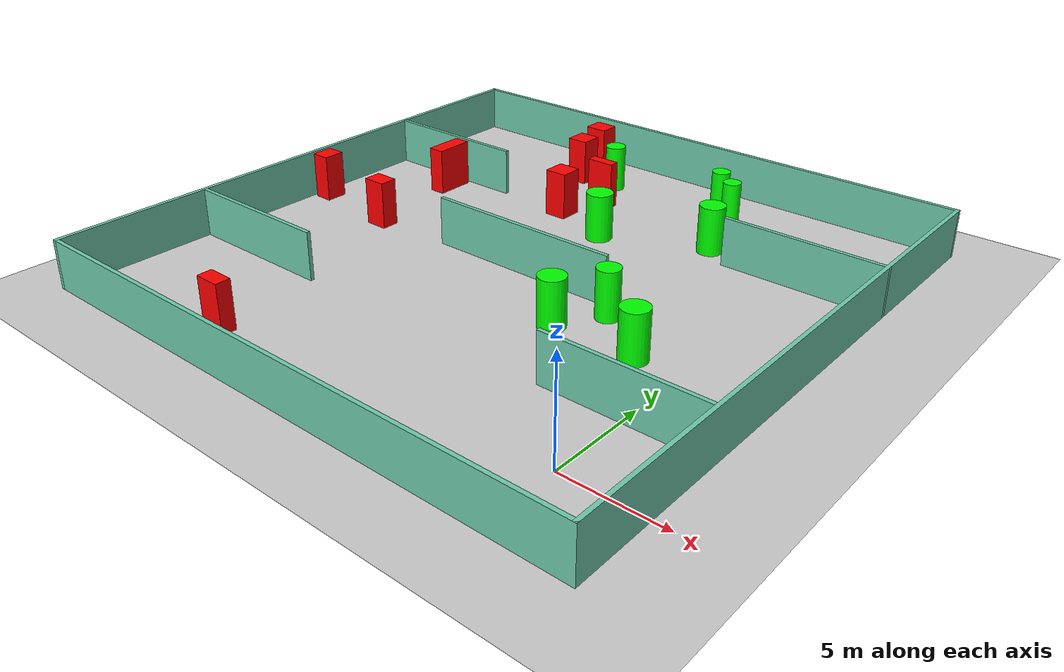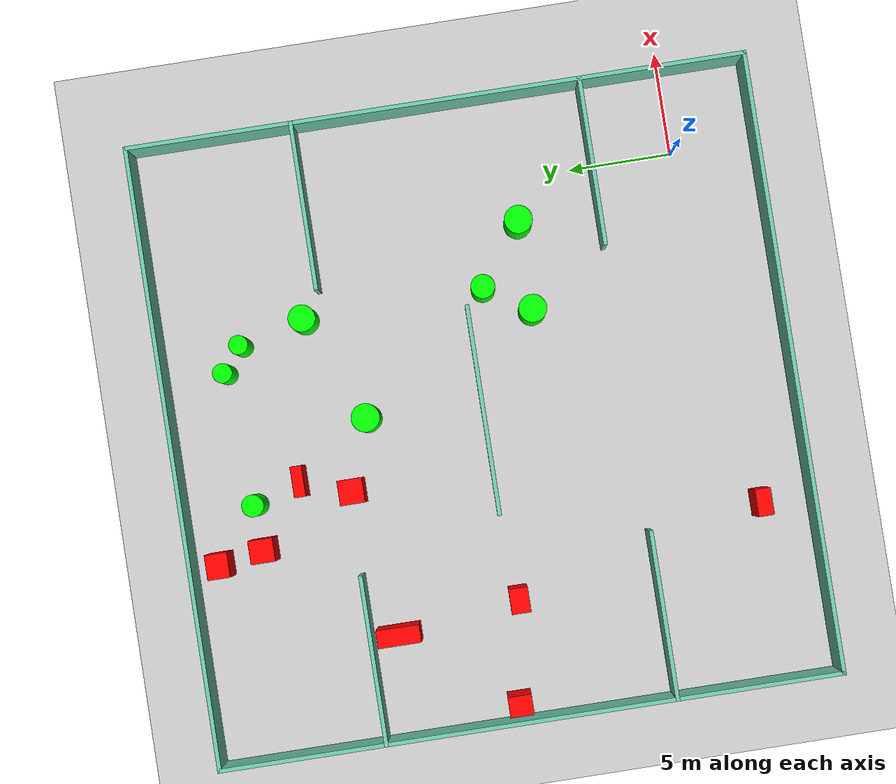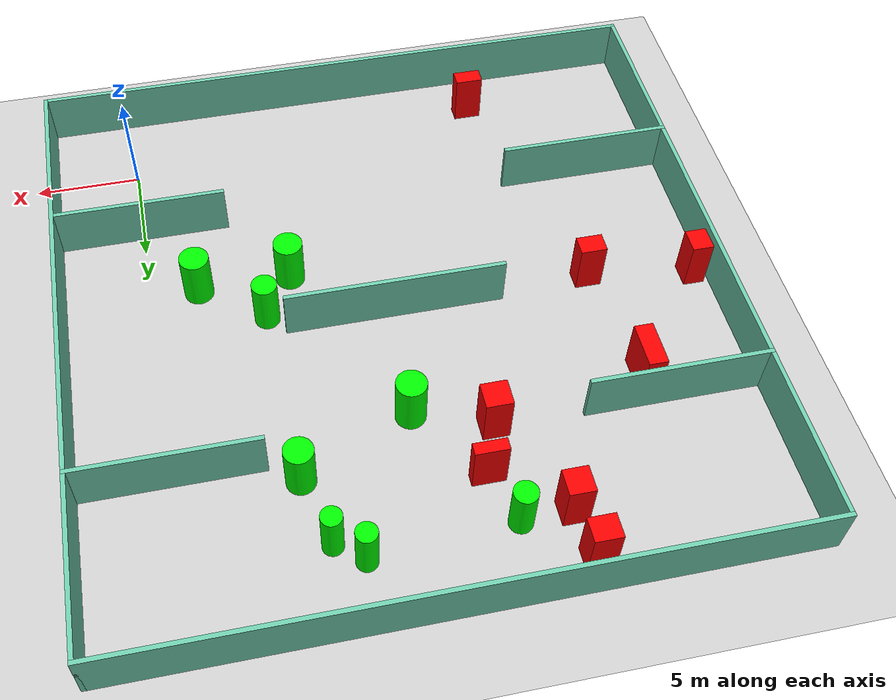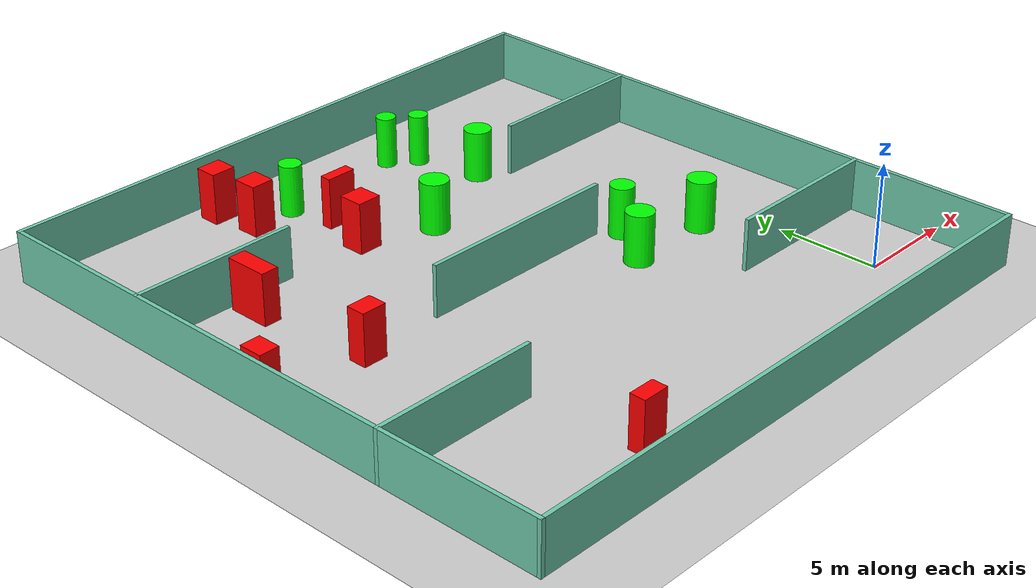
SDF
<sdf version="1.7">
 <world name="default">
  <light name="sun" type="directional">
   <pose>0 0 10 0 -0 0</pose>
   <diffuse>0.8 0.8 0.8 1</diffuse>
   <specular>0.2 0.2 0.2 1</specular>
   <attenuation>
    <range>1000</range>
    <constant>0.9</constant>
    <linear>0.01</linear>
    <quadratic>0.001</quadratic>
   </attenuation>
   <direction>-0.5 0.1 -0.9</direction>
   <spot><inner_angle>0</inner_angle><outer_angle>0</outer_angle><falloff>0</falloff></spot>
  </light>
  <model name="ground_plane">
   <static>1</static>
   <link name="link">
    <collision name="collision">
     <geometry><plane><normal>0 0 1</normal><size>100 100</size></plane></geometry>
     <surface>
      <contact><collide_bitmask>65535</collide_bitmask></contact>
      <friction><ode><mu>100</mu><mu2>50</mu2></ode></friction>
     </surface>
    </collision>
    <visual name="visual">
     <cast_shadows>0</cast_shadows>
     <geometry><plane><normal>0 0 1</normal><size>100 100</size></plane></geometry>
     <material>
      <script><uri>file://media/materials/scripts/gazebo.material</uri><name>Gazebo/Grey</name></script>
     </material>
    </visual>
   </link>
  </model>
  <gravity>0 0 -9.8</gravity>
  <magnetic_field>6e-06 2.3e-05 -4.2e-05</magnetic_field>
  <atmosphere type="adiabatic"/>
  <physics type="ode">
   <max_step_size>0.001</max_step_size>
   <real_time_factor>1</real_time_factor>
   <real_time_update_rate>1000</real_time_update_rate>
  </physics>
  <scene><ambient>0.4 0.4 0.4 1</ambient><background>0.7 0.7 0.7 1</background><shadows>1</shadows></scene>
  <spherical_coordinates>
   <surface_model>EARTH_WGS84</surface_model>
   <latitude_deg>0</latitude_deg>
   <longitude_deg>0</longitude_deg>
   <elevation>0</elevation>
   <heading_deg>0</heading_deg>
  </spherical_coordinates>
  <model name="my_base_walls">
   <link name="Wall_10">
    <collision name="Wall_10_Collision">
     <geometry><box><size>8.2 0.2 2.5</size></box></geometry>
     <pose>0 0 1.25 0 -0 0</pose>
    </collision>
    <visual name="Wall_10_Visual">
     <pose>0 0 1.25 0 -0 0</pose>
     <geometry><box><size>8.2 0.2 2.5</size></box></geometry>
     <material>
      <script><uri>file://media/materials/scripts/gazebo.material</uri><name>Gazebo/Grey</name></script>
      <ambient>0.435294 0.796078 0.67451 1</ambient>
     </material>
     <meta><layer>0</layer></meta>
    </visual>
    <pose>-11 -7 0 0 -0 0</pose>
   </link>
   <link name="Wall_12">
    <collision name="Wall_12_Collision">
     <geometry><box><size>8.2 0.2 2.5</size></box></geometry>
     <pose>0 0 1.25 0 -0 0</pose>
    </collision>
    <visual name="Wall_12_Visual">
     <pose>0 0 1.25 0 -0 0</pose>
     <geometry><box><size>8.2 0.2 2.5</size></box></geometry>
     <material>
      <script><uri>file://media/materials/scripts/gazebo.material</uri><name>Gazebo/Grey</name></script>
      <ambient>0.435294 0.796078 0.67451 1</ambient>
     </material>
     <meta><layer>0</layer></meta>
    </visual>
    <pose>-11 7 0 0 -0 0</pose>
   </link>
   <link name="Wall_14">
    <collision name="Wall_14_Collision">
     <geometry><box><size>8.2 0.2 2.5</size></box></geometry>
     <pose>0 0 1.25 0 -0 0</pose>
    </collision>
    <visual name="Wall_14_Visual">
     <pose>0 0 1.25 0 -0 0</pose>
     <geometry><box><size>8.2 0.2 2.5</size></box></geometry>
     <material>
      <script><uri>file://media/materials/scripts/gazebo.material</uri><name>Gazebo/Grey</name></script>
      <ambient>0.435294 0.796078 0.67451 1</ambient>
     </material>
     <meta><layer>0</layer></meta>
    </visual>
    <pose>11 7 0 0 -0 3.14159</pose>
   </link>
   <link name="Wall_16">
    <collision name="Wall_16_Collision">
     <geometry><box><size>10.2 0.2 2.5</size></box></geometry>
     <pose>0 0 1.25 0 -0 0</pose>
    </collision>
    <visual name="Wall_16_Visual">
     <pose>0 0 1.25 0 -0 0</pose>
     <geometry><box><size>10.2 0.2 2.5</size></box></geometry>
     <material>
      <script><uri>file://media/materials/scripts/gazebo.material</uri><name>Gazebo/Grey</name></script>
      <ambient>0.435294 0.796078 0.67451 1</ambient>
     </material>
     <meta><layer>0</layer></meta>
    </visual>
    <pose>0 0 0 0 -0 3.14159</pose>
   </link>
   <link name="Wall_2">
    <collision name="Wall_2_Collision">
     <geometry><box><size>30.2 0.2 2.5</size></box></geometry>
     <pose>0 0 1.25 0 -0 0</pose>
    </collision>
    <visual name="Wall_2_Visual">
     <pose>0 0 1.25 0 -0 0</pose>
     <geometry><box><size>30.2 0.2 2.5</size></box></geometry>
     <material>
      <script><uri>file://media/materials/scripts/gazebo.material</uri><name>Gazebo/Grey</name></script>
      <ambient>0.435294 0.796078 0.67451 1</ambient>
     </material>
     <meta><layer>0</layer></meta>
    </visual>
    <pose>0 -15 0 0 -0 3.14159</pose>
   </link>
   <link name="Wall_3">
    <collision name="Wall_3_Collision">
     <geometry><box><size>30.2 0.2 2.5</size></box></geometry>
     <pose>0 0 1.25 0 -0 0</pose>
    </collision>
    <visual name="Wall_3_Visual">
     <pose>0 0 1.25 0 -0 0</pose>
     <geometry><box><size>30.2 0.2 2.5</size></box></geometry>
     <material>
      <script><uri>file://media/materials/scripts/gazebo.material</uri><name>Gazebo/Grey</name></script>
      <ambient>0.435294 0.796078 0.67451 1</ambient>
     </material>
     <meta><layer>0</layer></meta>
    </visual>
    <pose>-15 0 0 0 -0 1.5708</pose>
   </link>
   <link name="Wall_4">
    <collision name="Wall_4_Collision">
     <geometry><box><size>30.2 0.2 2.5</size></box></geometry>
     <pose>0 0 1.25 0 -0 0</pose>
    </collision>
    <visual name="Wall_4_Visual">
     <pose>0 0 1.25 0 -0 0</pose>
     <geometry><box><size>30.2 0.2 2.5</size></box></geometry>
     <material>
      <script><uri>file://media/materials/scripts/gazebo.material</uri><name>Gazebo/Grey</name></script>
      <ambient>0.435294 0.796078 0.67451 1</ambient>
     </material>
     <meta><layer>0</layer></meta>
    </visual>
    <pose>0 15 0 0 -0 0</pose>
   </link>
   <link name="Wall_6">
    <collision name="Wall_6_Collision">
     <geometry><box><size>30.2 0.2 2.5</size></box></geometry>
     <pose>0 0 1.25 0 -0 0</pose>
    </collision>
    <visual name="Wall_6_Visual">
     <pose>0 0 1.25 0 -0 0</pose>
     <geometry><box><size>30.2 0.2 2.5</size></box></geometry>
     <material>
      <script><uri>file://media/materials/scripts/gazebo.material</uri><name>Gazebo/Grey</name></script>
      <ambient>0.435294 0.796078 0.67451 1</ambient>
     </material>
     <meta><layer>0</layer></meta>
    </visual>
    <pose>15 0 0 0 -0 1.5708</pose>
   </link>
   <link name="Wall_8">
    <collision name="Wall_8_Collision">
     <geometry><box><size>8.2 0.2 2.5</size></box></geometry>
     <pose>0 0 1.25 0 -0 0</pose>
    </collision>
    <visual name="Wall_8_Visual">
     <pose>0 0 1.25 0 -0 0</pose>
     <geometry><box><size>8.2 0.2 2.5</size></box></geometry>
     <material>
      <script><uri>file://media/materials/scripts/gazebo.material</uri><name>Gazebo/Grey</name></script>
      <ambient>0.435294 0.796078 0.67451 1</ambient>
     </material>
     <meta><layer>0</layer></meta>
    </visual>
    <pose>11 -7 0 0 -0 3.14159</pose>
   </link>
   <static>1</static>
   <pose>-11 11 0 0 -0 0</pose>
  </model>
  <model name="cylinder1">
   <static>1</static>
   <link name="link">
    <inertial>
     <mass>1</mass>
     <inertia><ixx>0.5</ixx><ixy>0</ixy><ixz>0</ixz><iyy>0.5</iyy><iyz>0</iyz><izz>1</izz></inertia>
    </inertial>
    <collision name="collision">
     <geometry><cylinder><radius>0.6889809452315377</radius><length>2.5</length></cylinder></geometry>
    </collision>
    <visual name="visual">
     <geometry><cylinder><radius>0.6889809452315377</radius><length>2.5</length></cylinder></geometry>
     <material>
      <ambient>0 1 0 1</ambient>
      <diffuse>0 1 0 1</diffuse>
      <specular>0.1 0.1 0.1 1</specular>
      <emissive>0 0 0 0</emissive>
     </material>
    </visual>
   </link>
   <pose>-10.503457457531397 16.607717449698697 1.25 0 0 0</pose>
  </model>
  <model name="cylinder2">
   <static>1</static>
   <link name="link">
    <inertial>
     <mass>1</mass>
     <inertia><ixx>0.5</ixx><ixy>0</ixy><ixz>0</ixz><iyy>0.5</iyy><iyz>0</iyz><izz>1</izz></inertia>
    </inertial>
    <collision name="collision">
     <geometry><cylinder><radius>0.5341846339665939</radius><length>2.5</length></cylinder></geometry>
    </collision>
    <visual name="visual">
     <geometry><cylinder><radius>0.5341846339665939</radius><length>2.5</length></cylinder></geometry>
     <material>
      <ambient>0 1 0 1</ambient>
      <diffuse>0 1 0 1</diffuse>
      <specular>0.1 0.1 0.1 1</specular>
      <emissive>0 0 0 0</emissive>
     </material>
    </visual>
   </link>
   <pose>-13.8242867070074 22.549931093252415 1.25 0 0 0</pose>
  </model>
  <model name="cylinder3">
   <static>1</static>
   <link name="link">
    <inertial>
     <mass>1</mass>
     <inertia><ixx>0.5</ixx><ixy>0</ixy><ixz>0</ixz><iyy>0.5</iyy><iyz>0</iyz><izz>1</izz></inertia>
    </inertial>
    <collision name="collision">
     <geometry><cylinder><radius>0.47395189070668853</radius><length>2.5</length></cylinder></geometry>
    </collision>
    <visual name="visual">
     <geometry><cylinder><radius>0.47395189070668853</radius><length>2.5</length></cylinder></geometry>
     <material>
      <ambient>0 1 0 1</ambient>
      <diffuse>0 1 0 1</diffuse>
      <specular>0.1 0.1 0.1 1</specular>
      <emissive>0 0 0 0</emissive>
     </material>
    </visual>
   </link>
   <pose>-7.346598210585922 23.025901866159547 1.25 0 0 0</pose>
  </model>
  <model name="cylinder4">
   <static>1</static>
   <link name="link">
    <inertial>
     <mass>1</mass>
     <inertia><ixx>0.5</ixx><ixy>0</ixy><ixz>0</ixz><iyy>0.5</iyy><iyz>0</iyz><izz>1</izz></inertia>
    </inertial>
    <collision name="collision">
     <geometry><cylinder><radius>0.4674687440896106</radius><length>2.5</length></cylinder></geometry>
    </collision>
    <visual name="visual">
     <geometry><cylinder><radius>0.4674687440896106</radius><length>2.5</length></cylinder></geometry>
     <material>
      <ambient>0 1 0 1</ambient>
      <diffuse>0 1 0 1</diffuse>
      <specular>0.1 0.1 0.1 1</specular>
      <emissive>0 0 0 0</emissive>
     </material>
    </visual>
   </link>
   <pose>-6.131994645123415 22.078051457472824 1.25 0 0 0</pose>
  </model>
  <model name="cylinder5">
   <static>1</static>
   <link name="link">
    <inertial>
     <mass>1</mass>
     <inertia><ixx>0.5</ixx><ixy>0</ixy><ixz>0</ixz><iyy>0.5</iyy><iyz>0</iyz><izz>1</izz></inertia>
    </inertial>
    <collision name="collision">
     <geometry><cylinder><radius>0.6795655228698905</radius><length>2.5</length></cylinder></geometry>
    </collision>
    <visual name="visual">
     <geometry><cylinder><radius>0.6795655228698905</radius><length>2.5</length></cylinder></geometry>
     <material>
      <ambient>0 1 0 1</ambient>
      <diffuse>0 1 0 1</diffuse>
      <specular>0.1 0.1 0.1 1</specular>
      <emissive>0 0 0 0</emissive>
     </material>
    </visual>
   </link>
   <pose>-6.566947590420948 7.910507317976705 1.25 0 0 0</pose>
  </model>
  <model name="cylinder6">
   <static>1</static>
   <link name="link">
    <inertial>
     <mass>1</mass>
     <inertia><ixx>0.5</ixx><ixy>0</ixy><ixz>0</ixz><iyy>0.5</iyy><iyz>0</iyz><izz>1</izz></inertia>
    </inertial>
    <collision name="collision">
     <geometry><cylinder><radius>0.6578794401202828</radius><length>2.5</length></cylinder></geometry>
    </collision>
    <visual name="visual">
     <geometry><cylinder><radius>0.6578794401202828</radius><length>2.5</length></cylinder></geometry>
     <material>
      <ambient>0 1 0 1</ambient>
      <diffuse>0 1 0 1</diffuse>
      <specular>0.1 0.1 0.1 1</specular>
      <emissive>0 0 0 0</emissive>
     </material>
    </visual>
   </link>
   <pose>-5.339431691162154 18.891880212511655 1.25 0 0 0</pose>
  </model>
  <model name="cylinder7">
   <static>1</static>
   <link name="link">
    <inertial>
     <mass>1</mass>
     <inertia><ixx>0.5</ixx><ixy>0</ixy><ixz>0</ixz><iyy>0.5</iyy><iyz>0</iyz><izz>1</izz></inertia>
    </inertial>
    <collision name="collision">
     <geometry><cylinder><radius>0.5833808176654078</radius><length>2.5</length></cylinder></geometry>
    </collision>
    <visual name="visual">
     <geometry><cylinder><radius>0.5833808176654078</radius><length>2.5</length></cylinder></geometry>
     <material>
      <ambient>0 1 0 1</ambient>
      <diffuse>0 1 0 1</diffuse>
      <specular>0.1 0.1 0.1 1</specular>
      <emissive>0 0 0 0</emissive>
     </material>
    </visual>
   </link>
   <pose>-5.171155530800583 10.107342140438421 1.25 0 0 0</pose>
  </model>
  <model name="cylinder8">
   <static>1</static>
   <link name="link">
    <inertial>
     <mass>1</mass>
     <inertia><ixx>0.5</ixx><ixy>0</ixy><ixz>0</ixz><iyy>0.5</iyy><iyz>0</iyz><izz>1</izz></inertia>
    </inertial>
    <collision name="collision">
     <geometry><cylinder><radius>0.68255155024715</radius><length>2.5</length></cylinder></geometry>
    </collision>
    <visual name="visual">
     <geometry><cylinder><radius>0.68255155024715</radius><length>2.5</length></cylinder></geometry>
     <material>
      <ambient>0 1 0 1</ambient>
      <diffuse>0 1 0 1</diffuse>
      <specular>0.1 0.1 0.1 1</specular>
      <emissive>0 0 0 0</emissive>
     </material>
    </visual>
   </link>
   <pose>-2.2546085903648496 7.934975365031068 1.25 0 0 0</pose>
  </model>
  <model name="box1">
   <static>1</static>
   <link name="link">
    <inertial>
     <mass>1</mass>
     <inertia><ixx>0.083</ixx><ixy>0</ixy><ixz>0</ixz><iyy>0.083</iyy><iyz>0</iyz><izz>0.083</izz></inertia>
    </inertial>
    <collision name="collision">
     <geometry><box><size>1.2167819615728332 0.9239144969160852 2.5</size></box></geometry>
    </collision>
    <visual name="visual">
     <geometry><box><size>1.2167819615728332 0.9239144969160852 2.5</size></box></geometry>
     <material>
      <ambient>1 0 0 1</ambient>
      <diffuse>1 0 0 1</diffuse>
      <specular>0.1 0.1 0.1 1</specular>
      <emissive>0 0 0 0</emissive>
     </material>
    </visual>
    <sensor name="my_contact" type="contact">
     <contact><collision>box_collision</collision><topic>__default_topic__</topic></contact>
    </sensor>
   </link>
   <pose>-20.237652550512287 10.68139341230528 1.25 0 0 0</pose>
  </model>
  <model name="box2">
   <static>1</static>
   <link name="link">
    <inertial>
     <mass>1</mass>
     <inertia><ixx>0.083</ixx><ixy>0</ixy><ixz>0</ixz><iyy>0.083</iyy><iyz>0</iyz><izz>0.083</izz></inertia>
    </inertial>
    <collision name="collision">
     <geometry><box><size>1.2166896941734522 1.0861408273622617 2.5</size></box></geometry>
    </collision>
    <visual name="visual">
     <geometry><box><size>1.2166896941734522 1.0861408273622617 2.5</size></box></geometry>
     <material>
      <ambient>1 0 0 1</ambient>
      <diffuse>1 0 0 1</diffuse>
      <specular>0.1 0.1 0.1 1</specular>
      <emissive>0 0 0 0</emissive>
     </material>
    </visual>
    <sensor name="my_contact" type="contact">
     <contact><collision>box_collision</collision><topic>__default_topic__</topic></contact>
    </sensor>
   </link>
   <pose>-16.407588137767906 24.652901266198377 1.25 0 0 0</pose>
  </model>
  <model name="box3">
   <static>1</static>
   <link name="link">
    <inertial>
     <mass>1</mass>
     <inertia><ixx>0.083</ixx><ixy>0</ixy><ixz>0</ixz><iyy>0.083</iyy><iyz>0</iyz><izz>0.083</izz></inertia>
    </inertial>
    <collision name="collision">
     <geometry><box><size>1.4982881559836392 0.5516531461383618 2.5</size></box></geometry>
    </collision>
    <visual name="visual">
     <geometry><box><size>1.4982881559836392 0.5516531461383618 2.5</size></box></geometry>
     <material>
      <ambient>1 0 0 1</ambient>
      <diffuse>1 0 0 1</diffuse>
      <specular>0.1 0.1 0.1 1</specular>
      <emissive>0 0 0 0</emissive>
     </material>
    </visual>
    <sensor name="my_contact" type="contact">
     <contact><collision>box_collision</collision><topic>__default_topic__</topic></contact>
    </sensor>
   </link>
   <pose>-13.013385435059762 20.254395873445116 1.25 0 0 0</pose>
  </model>
  <model name="box4">
   <static>1</static>
   <link name="link">
    <inertial>
     <mass>1</mass>
     <inertia><ixx>0.083</ixx><ixy>0</ixy><ixz>0</ixz><iyy>0.083</iyy><iyz>0</iyz><izz>0.083</izz></inertia>
    </inertial>
    <collision name="collision">
     <geometry><box><size>0.8626210306533868 2.093927355471357 2.5</size></box></geometry>
    </collision>
    <visual name="visual">
     <geometry><box><size>0.8626210306533868 2.093927355471357 2.5</size></box></geometry>
     <material>
      <ambient>1 0 0 1</ambient>
      <diffuse>1 0 0 1</diffuse>
      <specular>0.1 0.1 0.1 1</specular>
      <emissive>0 0 0 0</emissive>
     </material>
    </visual>
    <sensor name="my_contact" type="contact">
     <contact><collision>box_collision</collision><topic>__default_topic__</topic></contact>
    </sensor>
   </link>
   <pose>-21.031876712925587 16.640668652085207 1.25 0 0 0</pose>
  </model>
  <model name="box5">
   <static>1</static>
   <link name="link">
    <inertial>
     <mass>1</mass>
     <inertia><ixx>0.083</ixx><ixy>0</ixy><ixz>0</ixz><iyy>0.083</iyy><iyz>0</iyz><izz>0.083</izz></inertia>
    </inertial>
    <collision name="collision">
     <geometry><box><size>0.9825381159690385 1.1435917062357932 2.5</size></box></geometry>
    </collision>
    <visual name="visual">
     <geometry><box><size>0.9825381159690385 1.1435917062357932 2.5</size></box></geometry>
     <material>
      <ambient>1 0 0 1</ambient>
      <diffuse>1 0 0 1</diffuse>
      <specular>0.1 0.1 0.1 1</specular>
      <emissive>0 0 0 0</emissive>
     </material>
    </visual>
    <sensor name="my_contact" type="contact">
     <contact><collision>box_collision</collision><topic>__default_topic__</topic></contact>
    </sensor>
   </link>
   <pose>-25.176979694252026 11.397708931193824 1.25 0 0 0</pose>
  </model>
  <model name="box6">
   <static>1</static>
   <link name="link">
    <inertial>
     <mass>1</mass>
     <inertia><ixx>0.083</ixx><ixy>0</ixy><ixz>0</ixz><iyy>0.083</iyy><iyz>0</iyz><izz>0.083</izz></inertia>
    </inertial>
    <collision name="collision">
     <geometry><box><size>1.3167949841291993 0.7593155598763727 2.5</size></box></geometry>
    </collision>
    <visual name="visual">
     <geometry><box><size>1.3167949841291993 0.7593155598763727 2.5</size></box></geometry>
     <material>
      <ambient>1 0 0 1</ambient>
      <diffuse>1 0 0 1</diffuse>
      <specular>0.1 0.1 0.1 1</specular>
      <emissive>0 0 0 0</emissive>
     </material>
    </visual>
    <sensor name="my_contact" type="contact">
     <contact><collision>box_collision</collision><topic>__default_topic__</topic></contact>
    </sensor>
   </link>
   <pose>-17.40825289682359 -1.5580611870138323 1.25 0 0 0</pose>
  </model>
  <model name="box7">
   <static>1</static>
   <link name="link">
    <inertial>
     <mass>1</mass>
     <inertia><ixx>0.083</ixx><ixy>0</ixy><ixz>0</ixz><iyy>0.083</iyy><iyz>0</iyz><izz>0.083</izz></inertia>
    </inertial>
    <collision name="collision">
     <geometry><box><size>1.2050925998394928 1.2009388594756585 2.5</size></box></geometry>
    </collision>
    <visual name="visual">
     <geometry><box><size>1.2050925998394928 1.2009388594756585 2.5</size></box></geometry>
     <material>
      <ambient>1 0 0 1</ambient>
      <diffuse>1 0 0 1</diffuse>
      <specular>0.1 0.1 0.1 1</specular>
      <emissive>0 0 0 0</emissive>
     </material>
    </visual>
    <sensor name="my_contact" type="contact">
     <contact><collision>box_collision</collision><topic>__default_topic__</topic></contact>
    </sensor>
   </link>
   <pose>-13.877572170103017 17.8264876467031 1.25 0 0 0</pose>
  </model>
  <model name="box8">
   <static>1</static>
   <link name="link">
    <inertial>
     <mass>1</mass>
     <inertia><ixx>0.083</ixx><ixy>0</ixy><ixz>0</ixz><iyy>0.083</iyy><iyz>0</iyz><izz>0.083</izz></inertia>
    </inertial>
    <collision name="collision">
     <geometry><box><size>1.1442147259172892 1.1823235869512636 2.5</size></box></geometry>
    </collision>
    <visual name="visual">
     <geometry><box><size>1.1442147259172892 1.1823235869512636 2.5</size></box></geometry>
     <material>
      <ambient>1 0 0 1</ambient>
      <diffuse>1 0 0 1</diffuse>
      <specular>0.1 0.1 0.1 1</specular>
      <emissive>0 0 0 0</emissive>
     </material>
    </visual>
    <sensor name="my_contact" type="contact">
     <contact><collision>box_collision</collision><topic>__default_topic__</topic></contact>
    </sensor>
   </link>
   <pose>-16.021586303057394 22.460350453473435 1.25 0 0 0</pose>
  </model>
 </world>
</sdf>
